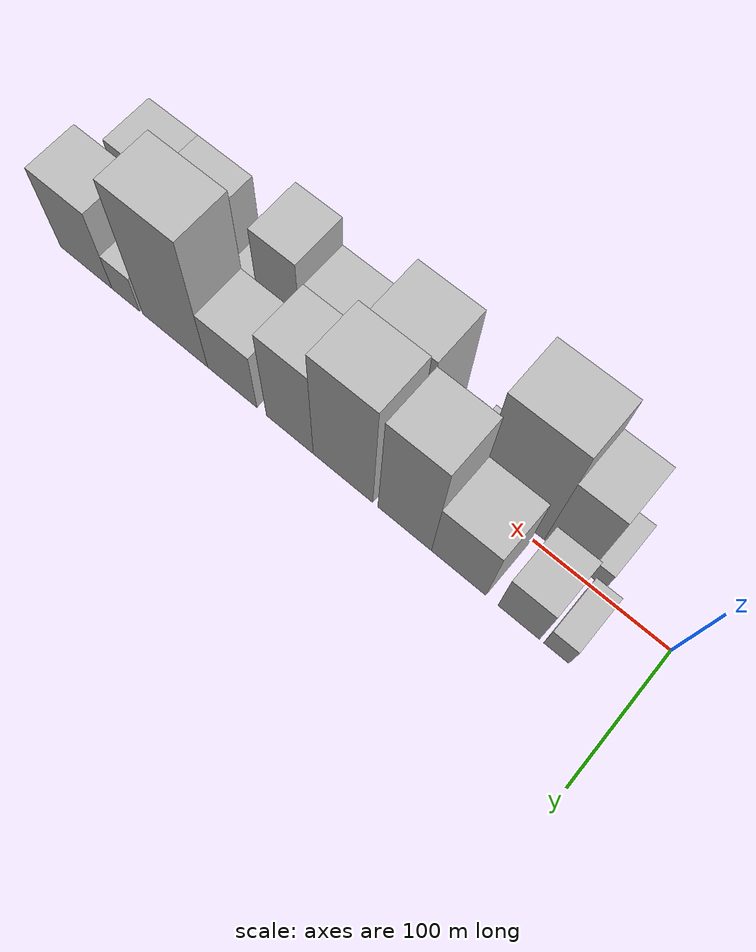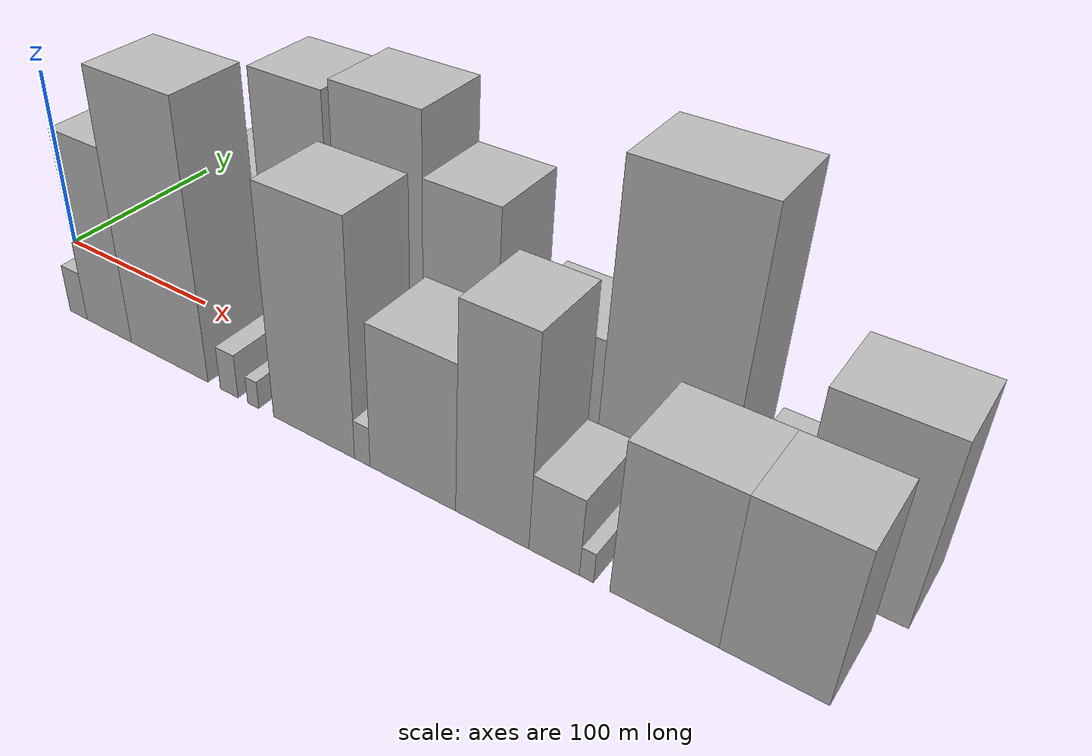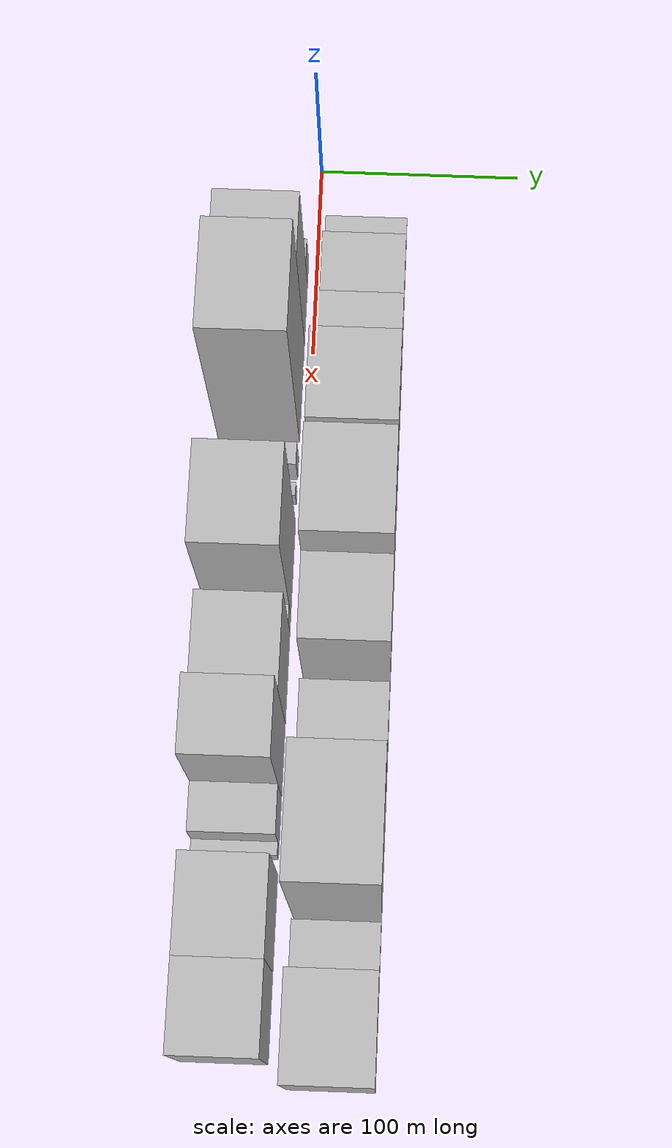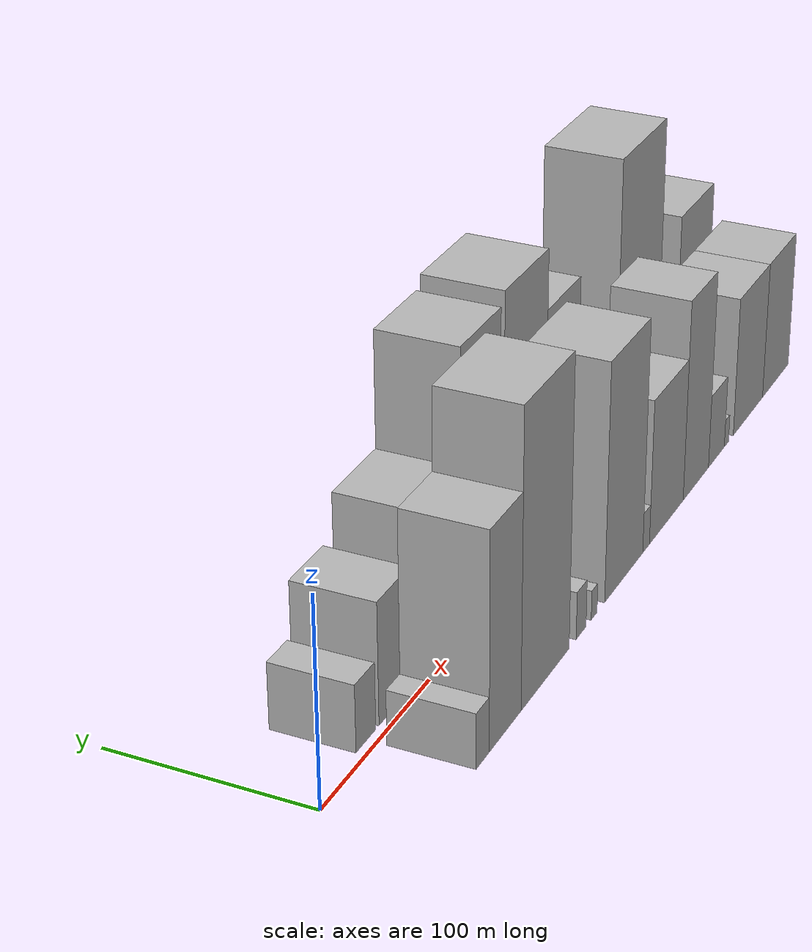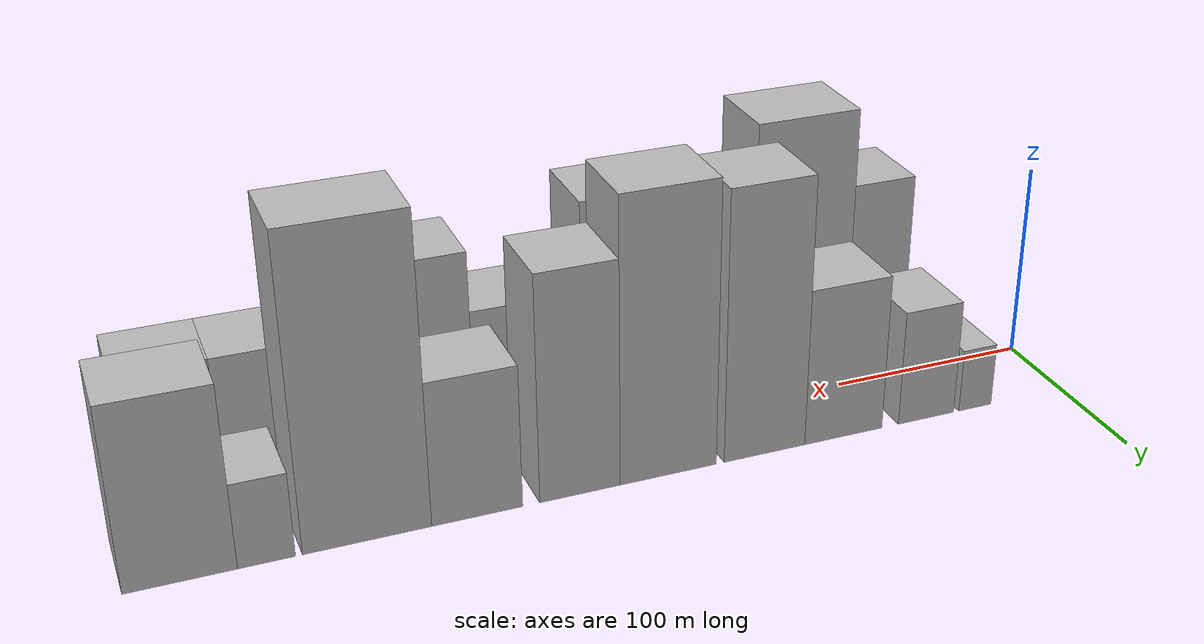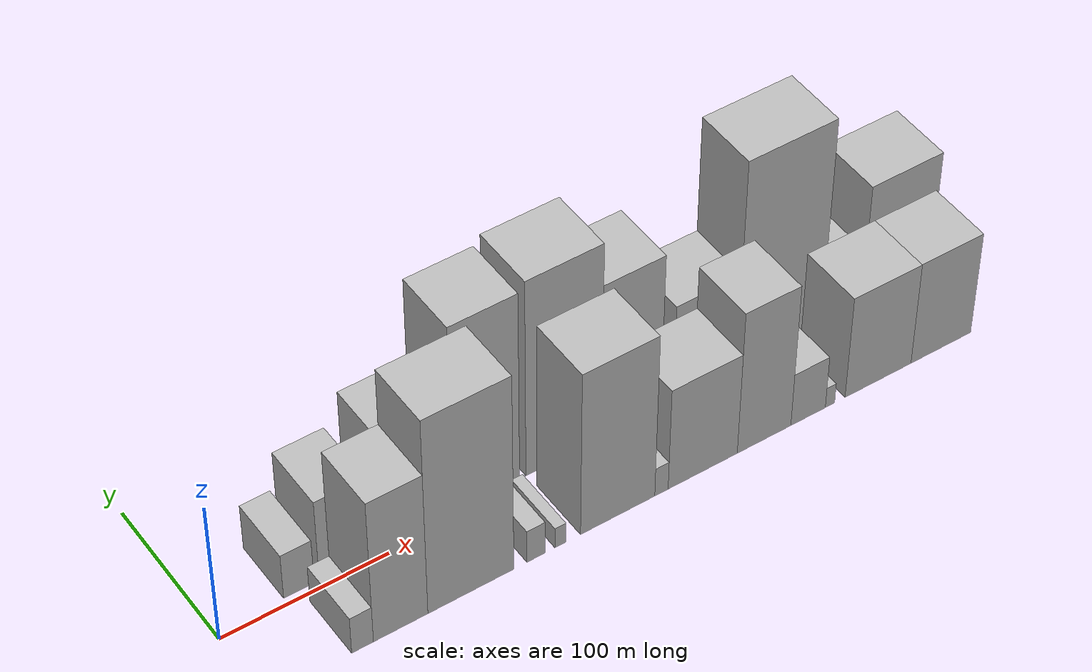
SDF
<sdf version="1.6">
 <world name="default">
  <scene>
   <sky><clouds><speed>12</speed></clouds></sky>
   <ambient>0.4 0.4 0.4 1</ambient>
   <background>0.7 0.7 0.7 1</background>
   <shadows>1</shadows>
  </scene>
  <gravity>0 0 -9.8066</gravity>
  <magnetic_field>6e-06 2.3e-05 -4.2e-05</magnetic_field>
  <physics default="0" name="default_physics" type="ode">
   <ode>
    <solver>
     <type>quick</type>
     <iters>10</iters>
     <sor>1.0</sor>
     <use_dynamic_moi_rescaling>0</use_dynamic_moi_rescaling>
    </solver>
    <constraints>
     <cfm>0</cfm>
     <erp>0.2</erp>
     <contact_max_correcting_vel>100</contact_max_correcting_vel>
     <contact_surface_layer>0.001</contact_surface_layer>
    </constraints>
   </ode>
   <max_step_size>0.004</max_step_size>
   <real_time_factor>1</real_time_factor>
   <real_time_update_rate>250</real_time_update_rate>
  </physics>
  <light name="sun" type="directional">
   <pose>0 0 10 0 0 0</pose>
   <diffuse>0.8 0.8 0.8 1</diffuse>
   <specular>0.2 0.2 0.2 1</specular>
   <attenuation>
    <range>1000</range>
    <constant>0.9</constant>
    <linear>0.01</linear>
    <quadratic>0.001</quadratic>
   </attenuation>
   <direction>-0.5 0.1 -0.9</direction>
  </light>
  <model name="building_1">
   <static>1</static>
   <pose>49.0058 24.5000 0 0.000000 0.000000 1.570796</pose>
   <link name="link">
    <pose>0 0 16.50 0 0 0</pose>
    <collision name="collision"><geometry><box><size>40.0000 18.0115 33.0000</size></box></geometry></collision>
    <visual name="visual">
     <cast_shadows>0</cast_shadows>
     <geometry><box><size>40.0000 18.0115 33.0000</size></box></geometry>
     <material>
      <script>
       <uri>model://HANNAS_wall/materials/scripts</uri>
       <uri>model://HANNAS_wall/materials/textures</uri>
       <name>vrc/HANNAS_wall</name>
      </script>
     </material>
    </visual>
   </link>
  </model>
  <model name="building_2">
   <static>1</static>
   <pose>76.2000 24.5000 0 0.000000 0.000000 1.570796</pose>
   <link name="link">
    <pose>0 0 30.00 0 0 0</pose>
    <collision name="collision"><geometry><box><size>40.0000 30.3770 60.0000</size></box></geometry></collision>
    <visual name="visual">
     <cast_shadows>0</cast_shadows>
     <geometry><box><size>40.0000 30.3770 60.0000</size></box></geometry>
     <material>
      <script>
       <uri>model://HANNAS_wall/materials/scripts</uri>
       <uri>model://HANNAS_wall/materials/textures</uri>
       <name>vrc/HANNAS_wall</name>
      </script>
     </material>
    </visual>
   </link>
  </model>
  <model name="building_3">
   <static>1</static>
   <pose>120.9270 24.5000 0 0.000000 0.000000 1.570796</pose>
   <link name="link">
    <pose>0 0 40.50 0 0 0</pose>
    <collision name="collision"><geometry><box><size>40.0000 41.0769 81.0000</size></box></geometry></collision>
    <visual name="visual">
     <cast_shadows>0</cast_shadows>
     <geometry><box><size>40.0000 41.0769 81.0000</size></box></geometry>
     <material>
      <script>
       <uri>model://HANNAS_wall/materials/scripts</uri>
       <uri>model://HANNAS_wall/materials/textures</uri>
       <name>vrc/HANNAS_wall</name>
      </script>
     </material>
    </visual>
   </link>
  </model>
  <model name="building_4">
   <static>1</static>
   <pose>162.2390 24.5000 0 0.000000 0.000000 1.570796</pose>
   <link name="link">
    <pose>0 0 69.00 0 0 0</pose>
    <collision name="collision"><geometry><box><size>40.0000 41.5473 138.0000</size></box></geometry></collision>
    <visual name="visual">
     <cast_shadows>0</cast_shadows>
     <geometry><box><size>40.0000 41.5473 138.0000</size></box></geometry>
     <material>
      <script>
       <uri>model://HANNAS_wall/materials/scripts</uri>
       <uri>model://HANNAS_wall/materials/textures</uri>
       <name>vrc/HANNAS_wall</name>
      </script>
     </material>
    </visual>
   </link>
  </model>
  <model name="building_5">
   <static>1</static>
   <pose>210.8646 24.5000 0 0.000000 0.000000 1.570796</pose>
   <link name="link">
    <pose>0 0 72.00 0 0 0</pose>
    <collision name="collision"><geometry><box><size>40.0000 47.7039 144.0000</size></box></geometry></collision>
    <visual name="visual">
     <cast_shadows>0</cast_shadows>
     <geometry><box><size>40.0000 47.7039 144.0000</size></box></geometry>
     <material>
      <script>
       <uri>model://HANNAS_wall/materials/scripts</uri>
       <uri>model://HANNAS_wall/materials/textures</uri>
       <name>vrc/HANNAS_wall</name>
      </script>
     </material>
    </visual>
   </link>
  </model>
  <model name="building_6">
   <static>1</static>
   <pose>253.9870 24.5000 0 0.000000 0.000000 1.570796</pose>
   <link name="link">
    <pose>0 0 57.00 0 0 0</pose>
    <collision name="collision"><geometry><box><size>40.0000 38.5410 114.0000</size></box></geometry></collision>
    <visual name="visual">
     <cast_shadows>0</cast_shadows>
     <geometry><box><size>40.0000 38.5410 114.0000</size></box></geometry>
     <material>
      <script>
       <uri>model://HANNAS_wall/materials/scripts</uri>
       <uri>model://HANNAS_wall/materials/textures</uri>
       <name>vrc/HANNAS_wall</name>
      </script>
     </material>
    </visual>
   </link>
  </model>
  <model name="building_7">
   <static>1</static>
   <pose>302.1869 24.5000 0 0.000000 0.000000 1.570796</pose>
   <link name="link">
    <pose>0 0 36.00 0 0 0</pose>
    <collision name="collision"><geometry><box><size>40.0000 41.8587 72.0000</size></box></geometry></collision>
    <visual name="visual">
     <cast_shadows>0</cast_shadows>
     <geometry><box><size>40.0000 41.8587 72.0000</size></box></geometry>
     <material>
      <script>
       <uri>model://HANNAS_wall/materials/scripts</uri>
       <uri>model://HANNAS_wall/materials/textures</uri>
       <name>vrc/HANNAS_wall</name>
      </script>
     </material>
    </visual>
   </link>
  </model>
  <model name="building_8">
   <static>1</static>
   <pose>351.6447 24.5000 0 0.000000 0.000000 1.570796</pose>
   <link name="link">
    <pose>0 0 76.50 0 0 0</pose>
    <collision name="collision"><geometry><box><size>40.0000 57.0570 153.0000</size></box></geometry></collision>
    <visual name="visual">
     <cast_shadows>0</cast_shadows>
     <geometry><box><size>40.0000 57.0570 153.0000</size></box></geometry>
     <material>
      <script>
       <uri>model://HANNAS_wall/materials/scripts</uri>
       <uri>model://HANNAS_wall/materials/textures</uri>
       <name>vrc/HANNAS_wall</name>
      </script>
     </material>
    </visual>
   </link>
  </model>
  <model name="building_9">
   <static>1</static>
   <pose>395.4825 24.5000 0 0.000000 0.000000 1.570796</pose>
   <link name="link">
    <pose>0 0 21.00 0 0 0</pose>
    <collision name="collision"><geometry><box><size>40.0000 24.6185 42.0000</size></box></geometry></collision>
    <visual name="visual">
     <cast_shadows>0</cast_shadows>
     <geometry><box><size>40.0000 24.6185 42.0000</size></box></geometry>
     <material>
      <script>
       <uri>model://HANNAS_wall/materials/scripts</uri>
       <uri>model://HANNAS_wall/materials/textures</uri>
       <name>vrc/HANNAS_wall</name>
      </script>
     </material>
    </visual>
   </link>
  </model>
  <model name="building_10">
   <static>1</static>
   <pose>431.6448 24.5000 0 0.000000 0.000000 1.570796</pose>
   <link name="link">
    <pose>0 0 45.00 0 0 0</pose>
    <collision name="collision"><geometry><box><size>40.0000 47.7062 90.0000</size></box></geometry></collision>
    <visual name="visual">
     <cast_shadows>0</cast_shadows>
     <geometry><box><size>40.0000 47.7062 90.0000</size></box></geometry>
     <material>
      <script>
       <uri>model://HANNAS_wall/materials/scripts</uri>
       <uri>model://HANNAS_wall/materials/textures</uri>
       <name>vrc/HANNAS_wall</name>
      </script>
     </material>
    </visual>
   </link>
  </model>
  <model name="building_11">
   <static>1</static>
   <pose>56.3744 -24.5000 0 0.000000 0.000000 1.570796</pose>
   <link name="link">
    <pose>0 0 13.50 0 0 0</pose>
    <collision name="collision"><geometry><box><size>40.0000 12.7488 27.0000</size></box></geometry></collision>
    <visual name="visual">
     <cast_shadows>0</cast_shadows>
     <geometry><box><size>40.0000 12.7488 27.0000</size></box></geometry>
     <material>
      <script>
       <uri>model://HANNAS_wall/materials/scripts</uri>
       <uri>model://HANNAS_wall/materials/textures</uri>
       <name>vrc/HANNAS_wall</name>
      </script>
     </material>
    </visual>
   </link>
  </model>
  <model name="building_12">
   <static>1</static>
   <pose>78.8677 -24.5000 0 0.000000 0.000000 1.570796</pose>
   <link name="link">
    <pose>0 0 52.50 0 0 0</pose>
    <collision name="collision"><geometry><box><size>40.0000 32.2377 105.0000</size></box></geometry></collision>
    <visual name="visual">
     <cast_shadows>0</cast_shadows>
     <geometry><box><size>40.0000 32.2377 105.0000</size></box></geometry>
     <material>
      <script>
       <uri>model://HANNAS_wall/materials/scripts</uri>
       <uri>model://HANNAS_wall/materials/textures</uri>
       <name>vrc/HANNAS_wall</name>
      </script>
     </material>
    </visual>
   </link>
  </model>
  <model name="building_13">
   <static>1</static>
   <pose>120.9228 -24.5000 0 0.000000 0.000000 1.570796</pose>
   <link name="link">
    <pose>0 0 72.00 0 0 0</pose>
    <collision name="collision"><geometry><box><size>40.0000 51.8724 144.0000</size></box></geometry></collision>
    <visual name="visual">
     <cast_shadows>0</cast_shadows>
     <geometry><box><size>40.0000 51.8724 144.0000</size></box></geometry>
     <material>
      <script>
       <uri>model://HANNAS_wall/materials/scripts</uri>
       <uri>model://HANNAS_wall/materials/textures</uri>
       <name>vrc/HANNAS_wall</name>
      </script>
     </material>
    </visual>
   </link>
  </model>
  <model name="building_14">
   <static>1</static>
   <pose>160.4725 -24.5000 0 0.000000 0.000000 1.570796</pose>
   <link name="link">
    <pose>0 0 12.00 0 0 0</pose>
    <collision name="collision"><geometry><box><size>40.0000 11.2270 24.0000</size></box></geometry></collision>
    <visual name="visual">
     <cast_shadows>0</cast_shadows>
     <geometry><box><size>40.0000 11.2270 24.0000</size></box></geometry>
     <material>
      <script>
       <uri>model://HANNAS_wall/materials/scripts</uri>
       <uri>model://HANNAS_wall/materials/textures</uri>
       <name>vrc/HANNAS_wall</name>
      </script>
     </material>
    </visual>
   </link>
  </model>
  <model name="building_15">
   <static>1</static>
   <pose>175.5054 -24.5000 0 0.000000 0.000000 1.570796</pose>
   <link name="link">
    <pose>0 0 7.50 0 0 0</pose>
    <collision name="collision"><geometry><box><size>40.0000 6.8389 15.0000</size></box></geometry></collision>
    <visual name="visual">
     <cast_shadows>0</cast_shadows>
     <geometry><box><size>40.0000 6.8389 15.0000</size></box></geometry>
     <material>
      <script>
       <uri>model://HANNAS_wall/materials/scripts</uri>
       <uri>model://HANNAS_wall/materials/textures</uri>
       <name>vrc/HANNAS_wall</name>
      </script>
     </material>
    </visual>
   </link>
  </model>
  <model name="building_16">
   <static>1</static>
   <pose>211.2695 -24.5000 0 0.000000 0.000000 1.570796</pose>
   <link name="link">
    <pose>0 0 60.00 0 0 0</pose>
    <collision name="collision"><geometry><box><size>40.0000 46.6893 120.0000</size></box></geometry></collision>
    <visual name="visual">
     <cast_shadows>0</cast_shadows>
     <geometry><box><size>40.0000 46.6893 120.0000</size></box></geometry>
     <material>
      <script>
       <uri>model://HANNAS_wall/materials/scripts</uri>
       <uri>model://HANNAS_wall/materials/textures</uri>
       <name>vrc/HANNAS_wall</name>
      </script>
     </material>
    </visual>
   </link>
  </model>
  <model name="building_17">
   <static>1</static>
   <pose>238.8695 -24.5000 0 0.000000 0.000000 1.570796</pose>
   <link name="link">
    <pose>0 0 10.50 0 0 0</pose>
    <collision name="collision"><geometry><box><size>40.0000 8.5107 21.0000</size></box></geometry></collision>
    <visual name="visual">
     <cast_shadows>0</cast_shadows>
     <geometry><box><size>40.0000 8.5107 21.0000</size></box></geometry>
     <material>
      <script>
       <uri>model://HANNAS_wall/materials/scripts</uri>
       <uri>model://HANNAS_wall/materials/textures</uri>
       <name>vrc/HANNAS_wall</name>
      </script>
     </material>
    </visual>
   </link>
  </model>
  <model name="building_18">
   <static>1</static>
   <pose>265.4014 -24.5000 0 0.000000 0.000000 1.570796</pose>
   <link name="link">
    <pose>0 0 37.50 0 0 0</pose>
    <collision name="collision"><geometry><box><size>40.0000 44.5532 75.0000</size></box></geometry></collision>
    <visual name="visual">
     <cast_shadows>0</cast_shadows>
     <geometry><box><size>40.0000 44.5532 75.0000</size></box></geometry>
     <material>
      <script>
       <uri>model://HANNAS_wall/materials/scripts</uri>
       <uri>model://HANNAS_wall/materials/textures</uri>
       <name>vrc/HANNAS_wall</name>
      </script>
     </material>
    </visual>
   </link>
  </model>
  <model name="building_19">
   <static>1</static>
   <pose>305.2588 -24.5000 0 0.000000 0.000000 1.570796</pose>
   <link name="link">
    <pose>0 0 52.50 0 0 0</pose>
    <collision name="collision"><geometry><box><size>40.0000 35.1615 105.0000</size></box></geometry></collision>
    <visual name="visual">
     <cast_shadows>0</cast_shadows>
     <geometry><box><size>40.0000 35.1615 105.0000</size></box></geometry>
     <material>
      <script>
       <uri>model://HANNAS_wall/materials/scripts</uri>
       <uri>model://HANNAS_wall/materials/textures</uri>
       <name>vrc/HANNAS_wall</name>
      </script>
     </material>
    </visual>
   </link>
  </model>
  <model name="building_20">
   <static>1</static>
   <pose>334.2833 -24.5000 0 0.000000 0.000000 1.570796</pose>
   <link name="link">
    <pose>0 0 19.50 0 0 0</pose>
    <collision name="collision"><geometry><box><size>40.0000 22.8875 39.0000</size></box></geometry></collision>
    <visual name="visual">
     <cast_shadows>0</cast_shadows>
     <geometry><box><size>40.0000 22.8875 39.0000</size></box></geometry>
     <material>
      <script>
       <uri>model://HANNAS_wall/materials/scripts</uri>
       <uri>model://HANNAS_wall/materials/textures</uri>
       <name>vrc/HANNAS_wall</name>
      </script>
     </material>
    </visual>
   </link>
  </model>
  <model name="building_21">
   <static>1</static>
   <pose>348.8430 -24.5000 0 0.000000 0.000000 1.570796</pose>
   <link name="link">
    <pose>0 0 7.50 0 0 0</pose>
    <collision name="collision"><geometry><box><size>40.0000 6.2320 15.0000</size></box></geometry></collision>
    <visual name="visual">
     <cast_shadows>0</cast_shadows>
     <geometry><box><size>40.0000 6.2320 15.0000</size></box></geometry>
     <material>
      <script>
       <uri>model://HANNAS_wall/materials/scripts</uri>
       <uri>model://HANNAS_wall/materials/textures</uri>
       <name>vrc/HANNAS_wall</name>
      </script>
     </material>
    </visual>
   </link>
  </model>
  <model name="building_22">
   <static>1</static>
   <pose>381.3250 -24.5000 0 0.000000 0.000000 1.570796</pose>
   <link name="link">
    <pose>0 0 37.50 0 0 0</pose>
    <collision name="collision"><geometry><box><size>40.0000 44.7321 75.0000</size></box></geometry></collision>
    <visual name="visual">
     <cast_shadows>0</cast_shadows>
     <geometry><box><size>40.0000 44.7321 75.0000</size></box></geometry>
     <material>
      <script>
       <uri>model://HANNAS_wall/materials/scripts</uri>
       <uri>model://HANNAS_wall/materials/textures</uri>
       <name>vrc/HANNAS_wall</name>
      </script>
     </material>
    </visual>
   </link>
  </model>
  <model name="building_23">
   <static>1</static>
   <pose>424.2889 -24.5000 0 0.000000 0.000000 1.570796</pose>
   <link name="link">
    <pose>0 0 37.50 0 0 0</pose>
    <collision name="collision"><geometry><box><size>40.0000 41.1956 75.0000</size></box></geometry></collision>
    <visual name="visual">
     <cast_shadows>0</cast_shadows>
     <geometry><box><size>40.0000 41.1956 75.0000</size></box></geometry>
     <material>
      <script>
       <uri>model://HANNAS_wall/materials/scripts</uri>
       <uri>model://HANNAS_wall/materials/textures</uri>
       <name>vrc/HANNAS_wall</name>
      </script>
     </material>
    </visual>
   </link>
  </model>
 </world>
</sdf>
